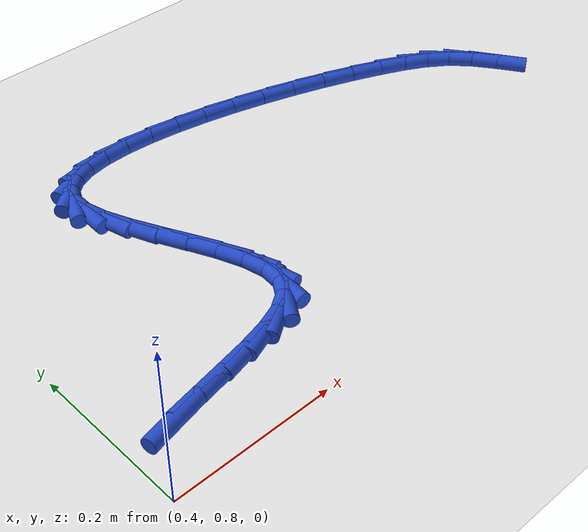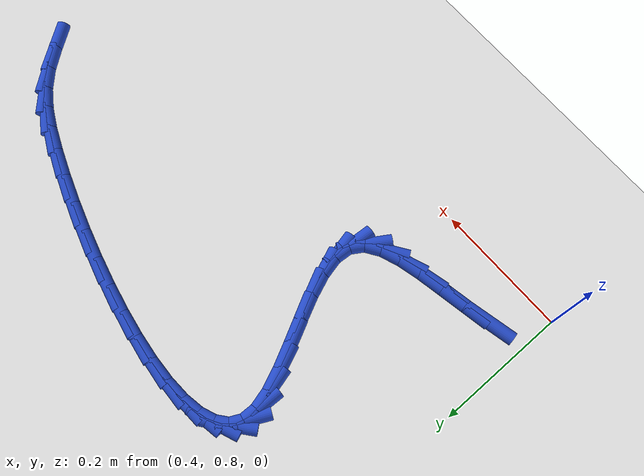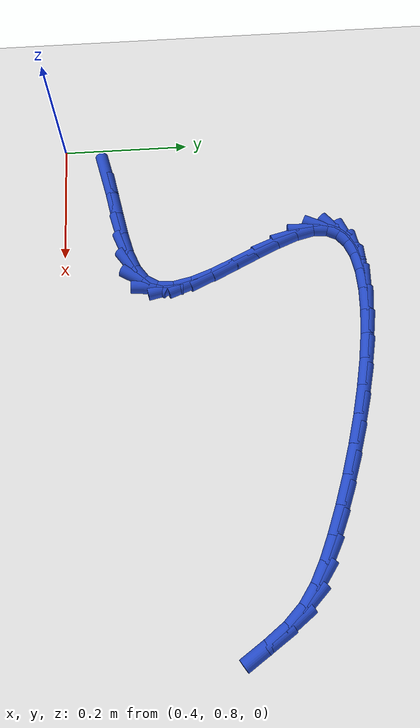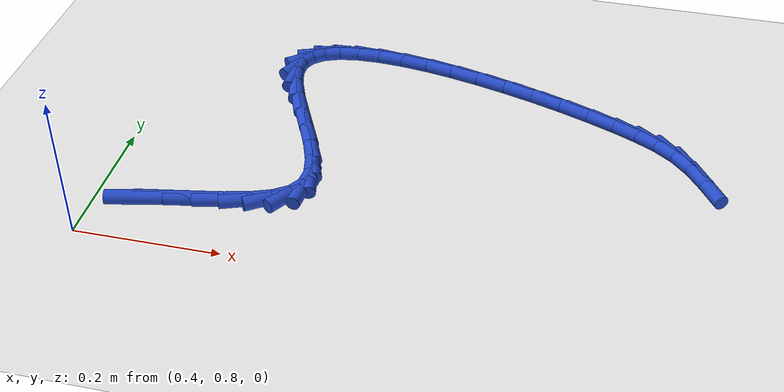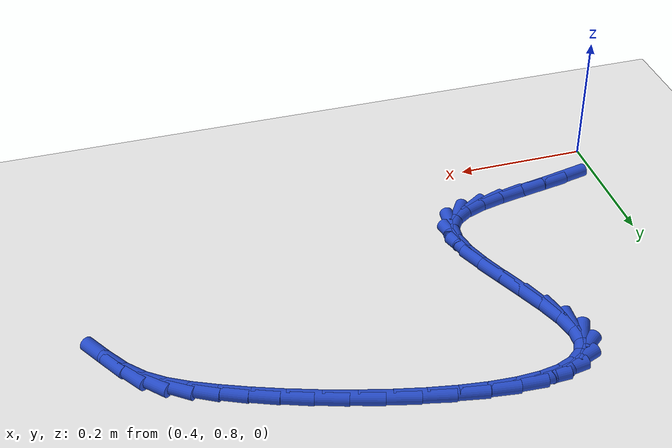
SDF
<sdf version="1.6">
 <world name="default">
  <model name="ground_plane">
   <static>1</static>
   <link name="link">
    <collision name="collision">
     <geometry><plane><normal>0 0 1</normal><size>100 100</size></plane></geometry>
     <surface><friction><ode><mu>100</mu><mu2>50</mu2></ode></friction></surface>
    </collision>
    <visual name="visual">
     <cast_shadows>0</cast_shadows>
     <geometry><plane><normal>0 0 1</normal><size>100 100</size></plane></geometry>
     <material>
      <script><uri>file://media/materials/scripts/gazebo.material</uri><name>Gazebo/WhiteGlow</name></script>
     </material>
    </visual>
   </link>
  </model>
  <model name="line">
   <link name="link_31">
    <pose>0.45767301450054715 0.8686455409579862 0.01 0 1.57 0.21296572190392837</pose>
    <collision name="collision">
     <geometry><cylinder><radius>0.01</radius><length>0.08</length></cylinder></geometry>
    </collision>
    <visual name="visual">
     <material>
      <script><name>Gazebo/Blue</name><uri>file://media/materials/scripts/gazebo.material</uri></script>
     </material>
     <geometry><cylinder><radius>0.01</radius><length>0.08</length></cylinder></geometry>
    </visual>
   </link>
   <link name="link_32">
    <pose>0.49574769273384056 0.8768789947400706 0.01 0 1.57 0.1778053408781745</pose>
    <collision name="collision">
     <geometry><cylinder><radius>0.01</radius><length>0.08</length></cylinder></geometry>
    </collision>
    <visual name="visual">
     <material>
      <script><name>Gazebo/Blue</name><uri>file://media/materials/scripts/gazebo.material</uri></script>
     </material>
     <geometry><cylinder><radius>0.01</radius><length>0.08</length></cylinder></geometry>
    </visual>
   </link>
   <link name="link_33">
    <pose>0.5342519465096038 0.8837983285011534 0.01 0 1.57 0.18293295546383148</pose>
    <collision name="collision">
     <geometry><cylinder><radius>0.01</radius><length>0.08</length></cylinder></geometry>
    </collision>
    <visual name="visual">
     <material>
      <script><name>Gazebo/Blue</name><uri>file://media/materials/scripts/gazebo.material</uri></script>
     </material>
     <geometry><cylinder><radius>0.01</radius><length>0.08</length></cylinder></geometry>
    </visual>
   </link>
   <link name="link_34">
    <pose>0.5712878523724615 0.8906500166373763 0.01 0 1.57 0.23413487884796141</pose>
    <collision name="collision">
     <geometry><cylinder><radius>0.01</radius><length>0.08</length></cylinder></geometry>
    </collision>
    <visual name="visual">
     <material>
      <script><name>Gazebo/Blue</name><uri>file://media/materials/scripts/gazebo.material</uri></script>
     </material>
     <geometry><cylinder><radius>0.01</radius><length>0.08</length></cylinder></geometry>
    </visual>
   </link>
   <link name="link_35">
    <pose>0.6049574868670381 0.8986805335448811 0.01 0 1.57 0.35270078433831425</pose>
    <collision name="collision">
     <geometry><cylinder><radius>0.01</radius><length>0.08</length></cylinder></geometry>
    </collision>
    <visual name="visual">
     <material>
      <script><name>Gazebo/Blue</name><uri>file://media/materials/scripts/gazebo.material</uri></script>
     </material>
     <geometry><cylinder><radius>0.01</radius><length>0.08</length></cylinder></geometry>
    </visual>
   </link>
   <link name="link_36">
    <pose>0.6333629265379582 0.9091363536198094 0.01 0 1.57 0.5868736189940619</pose>
    <collision name="collision">
     <geometry><cylinder><radius>0.01</radius><length>0.08</length></cylinder></geometry>
    </collision>
    <visual name="visual">
     <material>
      <script><name>Gazebo/Blue</name><uri>file://media/materials/scripts/gazebo.material</uri></script>
     </material>
     <geometry><cylinder><radius>0.01</radius><length>0.08</length></cylinder></geometry>
    </visual>
   </link>
   <link name="link_37">
    <pose>0.6546062479298468 0.923263951258303 0.01 0 1.57 1.0016968772270858</pose>
    <collision name="collision">
     <geometry><cylinder><radius>0.01</radius><length>0.08</length></cylinder></geometry>
    </collision>
    <visual name="visual">
     <material>
      <script><name>Gazebo/Blue</name><uri>file://media/materials/scripts/gazebo.material</uri></script>
     </material>
     <geometry><cylinder><radius>0.01</radius><length>0.08</length></cylinder></geometry>
    </visual>
   </link>
   <link name="link_38">
    <pose>0.6667897614419297 0.9423096559597306 0.01 0 1.57 1.4863423343294806</pose>
    <collision name="collision">
     <geometry><cylinder><radius>0.01</radius><length>0.08</length></cylinder></geometry>
    </collision>
    <visual name="visual">
     <material>
      <script><name>Gazebo/Blue</name><uri>file://media/materials/scripts/gazebo.material</uri></script>
     </material>
     <geometry><cylinder><radius>0.01</radius><length>0.08</length></cylinder></geometry>
    </visual>
   </link>
   <link name="link_39">
    <pose>0.668878673742882 0.9669851449939091 0.01 0 1.57 -1.361037192958256</pose>
    <collision name="collision">
     <geometry><cylinder><radius>0.01</radius><length>0.08</length></cylinder></geometry>
    </collision>
    <visual name="visual">
     <material>
      <script><name>Gazebo/Blue</name><uri>file://media/materials/scripts/gazebo.material</uri></script>
     </material>
     <geometry><cylinder><radius>0.01</radius><length>0.08</length></cylinder></geometry>
    </visual>
   </link>
   <link name="link_40">
    <pose>0.66264579945127 0.9962624962103419 0.01 0 1.57 -1.2113510625095167</pose>
    <collision name="collision">
     <geometry><cylinder><radius>0.01</radius><length>0.08</length></cylinder></geometry>
    </collision>
    <visual name="visual">
     <material>
      <script><name>Gazebo/Blue</name><uri>file://media/materials/scripts/gazebo.material</uri></script>
     </material>
     <geometry><cylinder><radius>0.01</radius><length>0.08</length></cylinder></geometry>
    </visual>
   </link>
   <link name="link_41">
    <pose>0.6504340049012347 1.028760582291836 0.01 0 1.57 -1.1383961814823833</pose>
    <collision name="collision">
     <geometry><cylinder><radius>0.01</radius><length>0.08</length></cylinder></geometry>
    </collision>
    <visual name="visual">
     <material>
      <script><name>Gazebo/Blue</name><uri>file://media/materials/scripts/gazebo.material</uri></script>
     </material>
     <geometry><cylinder><radius>0.01</radius><length>0.08</length></cylinder></geometry>
    </visual>
   </link>
   <link name="link_42">
    <pose>0.6345861564269176 1.0630982759211978 0.01 0 1.57 -1.113076028456115</pose>
    <collision name="collision">
     <geometry><cylinder><radius>0.01</radius><length>0.08</length></cylinder></geometry>
    </collision>
    <visual name="visual">
     <material>
      <script><name>Gazebo/Blue</name><uri>file://media/materials/scripts/gazebo.material</uri></script>
     </material>
     <geometry><cylinder><radius>0.01</radius><length>0.08</length></cylinder></geometry>
    </visual>
   </link>
   <link name="link_43">
    <pose>0.6174451203624599 1.0978944497812342 0.01 0 1.57 -1.127313495933282</pose>
    <collision name="collision">
     <geometry><cylinder><radius>0.01</radius><length>0.08</length></cylinder></geometry>
    </collision>
    <visual name="visual">
     <material>
      <script><name>Gazebo/Blue</name><uri>file://media/materials/scripts/gazebo.material</uri></script>
     </material>
     <geometry><cylinder><radius>0.01</radius><length>0.08</length></cylinder></geometry>
    </visual>
   </link>
   <link name="link_44">
    <pose>0.6013537630420026 1.1317679765547524 0.01 0 1.57 -1.1883550900838769</pose>
    <collision name="collision">
     <geometry><cylinder><radius>0.01</radius><length>0.08</length></cylinder></geometry>
    </collision>
    <visual name="visual">
     <material>
      <script><name>Gazebo/Blue</name><uri>file://media/materials/scripts/gazebo.material</uri></script>
     </material>
     <geometry><cylinder><radius>0.01</radius><length>0.08</length></cylinder></geometry>
    </visual>
   </link>
   <link name="link_45">
    <pose>0.5886549507996872 1.1633377289245581 0.01 0 1.57 -1.326081347961942</pose>
    <collision name="collision">
     <geometry><cylinder><radius>0.01</radius><length>0.08</length></cylinder></geometry>
    </collision>
    <visual name="visual">
     <material>
      <script><name>Gazebo/Blue</name><uri>file://media/materials/scripts/gazebo.material</uri></script>
     </material>
     <geometry><cylinder><radius>0.01</radius><length>0.08</length></cylinder></geometry>
    </visual>
   </link>
   <link name="link_46">
    <pose>0.5816915499696549 1.1912225795734592 0.01 0 1.57 1.5312222667075162</pose>
    <collision name="collision">
     <geometry><cylinder><radius>0.01</radius><length>0.08</length></cylinder></geometry>
    </collision>
    <visual name="visual">
     <material>
      <script><name>Gazebo/Blue</name><uri>file://media/materials/scripts/gazebo.material</uri></script>
     </material>
     <geometry><cylinder><radius>0.01</radius><length>0.08</length></cylinder></geometry>
    </visual>
   </link>
   <link name="link_47">
    <pose>0.5825995621508034 1.214155230788296 0.01 0 1.57 1.1026287620602837</pose>
    <collision name="collision">
     <geometry><cylinder><radius>0.01</radius><length>0.08</length></cylinder></geometry>
    </collision>
    <visual name="visual">
     <material>
      <script><name>Gazebo/Blue</name><uri>file://media/materials/scripts/gazebo.material</uri></script>
     </material>
     <geometry><cylinder><radius>0.01</radius><length>0.08</length></cylinder></geometry>
    </visual>
   </link>
   <link name="link_48">
    <pose>0.5915871864608415 1.231929179451142 0.01 0 1.57 0.6749368980002889</pose>
    <collision name="collision">
     <geometry><cylinder><radius>0.01</radius><length>0.08</length></cylinder></geometry>
    </collision>
    <visual name="visual">
     <material>
      <script><name>Gazebo/Blue</name><uri>file://media/materials/scripts/gazebo.material</uri></script>
     </material>
     <geometry><cylinder><radius>0.01</radius><length>0.08</length></cylinder></geometry>
    </visual>
   </link>
   <link name="link_49">
    <pose>0.6078133280040979 1.2449153080575177 0.01 0 1.57 0.3624519466559067</pose>
    <collision name="collision">
     <geometry><cylinder><radius>0.01</radius><length>0.08</length></cylinder></geometry>
    </collision>
    <visual name="visual">
     <material>
      <script><name>Gazebo/Blue</name><uri>file://media/materials/scripts/gazebo.material</uri></script>
     </material>
     <geometry><cylinder><radius>0.01</radius><length>0.08</length></cylinder></geometry>
    </visual>
   </link>
   <link name="link_50">
    <pose>0.6304263777736273 1.2534902846087292 0.01 0 1.57 0.15992822698306933</pose>
    <collision name="collision">
     <geometry><cylinder><radius>0.01</radius><length>0.08</length></cylinder></geometry>
    </collision>
    <visual name="visual">
     <material>
      <script><name>Gazebo/Blue</name><uri>file://media/materials/scripts/gazebo.material</uri></script>
     </material>
     <geometry><cylinder><radius>0.01</radius><length>0.08</length></cylinder></geometry>
    </visual>
   </link>
   <link name="link_51">
    <pose>0.6585747267624839 1.2580307771060848 0.01 0 1.57 0.026878131774821942</pose>
    <collision name="collision">
     <geometry><cylinder><radius>0.01</radius><length>0.08</length></cylinder></geometry>
    </collision>
    <visual name="visual">
     <material>
      <script><name>Gazebo/Blue</name><uri>file://media/materials/scripts/gazebo.material</uri></script>
     </material>
     <geometry><cylinder><radius>0.01</radius><length>0.08</length></cylinder></geometry>
    </visual>
   </link>
   <link name="link_52">
    <pose>0.6914067659637232 1.258913453550892 0.01 0 1.57 -0.06532432712867192</pose>
    <collision name="collision">
     <geometry><cylinder><radius>0.01</radius><length>0.08</length></cylinder></geometry>
    </collision>
    <visual name="visual">
     <material>
      <script><name>Gazebo/Blue</name><uri>file://media/materials/scripts/gazebo.material</uri></script>
     </material>
     <geometry><cylinder><radius>0.01</radius><length>0.08</length></cylinder></geometry>
    </visual>
   </link>
   <link name="link_53">
    <pose>0.7280708863703993 1.2565149819444574 0.01 0 1.57 -0.13297297661138285</pose>
    <collision name="collision">
     <geometry><cylinder><radius>0.01</radius><length>0.08</length></cylinder></geometry>
    </collision>
    <visual name="visual">
     <material>
      <script><name>Gazebo/Blue</name><uri>file://media/materials/scripts/gazebo.material</uri></script>
     </material>
     <geometry><cylinder><radius>0.01</radius><length>0.08</length></cylinder></geometry>
    </visual>
   </link>
   <link name="link_54">
    <pose>0.7677154789755671 1.251212030288089 0.01 0 1.57 -0.18530726575082315</pose>
    <collision name="collision">
     <geometry><cylinder><radius>0.01</radius><length>0.08</length></cylinder></geometry>
    </collision>
    <visual name="visual">
     <material>
      <script><name>Gazebo/Blue</name><uri>file://media/materials/scripts/gazebo.material</uri></script>
     </material>
     <geometry><cylinder><radius>0.01</radius><length>0.08</length></cylinder></geometry>
    </visual>
   </link>
   <link name="link_55">
    <pose>0.8094889347722817 1.2433812665830934 0.01 0 1.57 -0.2278379685912845</pose>
    <collision name="collision">
     <geometry><cylinder><radius>0.01</radius><length>0.08</length></cylinder></geometry>
    </collision>
    <visual name="visual">
     <material>
      <script><name>Gazebo/Blue</name><uri>file://media/materials/scripts/gazebo.material</uri></script>
     </material>
     <geometry><cylinder><radius>0.01</radius><length>0.08</length></cylinder></geometry>
    </visual>
   </link>
   <link name="link_56">
    <pose>0.8525396447535973 1.2333993588307788 0.01 0 1.57 -0.2640927065759335</pose>
    <collision name="collision">
     <geometry><cylinder><radius>0.01</radius><length>0.08</length></cylinder></geometry>
    </collision>
    <visual name="visual">
     <material>
      <script><name>Gazebo/Blue</name><uri>file://media/materials/scripts/gazebo.material</uri></script>
     </material>
     <geometry><cylinder><radius>0.01</radius><length>0.08</length></cylinder></geometry>
    </visual>
   </link>
   <link name="link_57">
    <pose>0.8960159999125691 1.2216429750324518 0.01 0 1.57 -0.29654380360677063</pose>
    <collision name="collision">
     <geometry><cylinder><radius>0.01</radius><length>0.08</length></cylinder></geometry>
    </collision>
    <visual name="visual">
     <material>
      <script><name>Gazebo/Blue</name><uri>file://media/materials/scripts/gazebo.material</uri></script>
     </material>
     <geometry><cylinder><radius>0.01</radius><length>0.08</length></cylinder></geometry>
    </visual>
   </link>
   <link name="link_58">
    <pose>0.9390663912422516 1.2084887831894207 0.01 0 1.57 -0.3271498618571152</pose>
    <collision name="collision">
     <geometry><cylinder><radius>0.01</radius><length>0.08</length></cylinder></geometry>
    </collision>
    <visual name="visual">
     <material>
      <script><name>Gazebo/Blue</name><uri>file://media/materials/scripts/gazebo.material</uri></script>
     </material>
     <geometry><cylinder><radius>0.01</radius><length>0.08</length></cylinder></geometry>
    </visual>
   </link>
   <link name="link_59">
    <pose>0.9808392097356997 1.194313451302992 0.01 0 1.57 -0.35774061045233907</pose>
    <collision name="collision">
     <geometry><cylinder><radius>0.01</radius><length>0.08</length></cylinder></geometry>
    </collision>
    <visual name="visual">
     <material>
      <script><name>Gazebo/Blue</name><uri>file://media/materials/scripts/gazebo.material</uri></script>
     </material>
     <geometry><cylinder><radius>0.01</radius><length>0.08</length></cylinder></geometry>
    </visual>
   </link>
   <link name="link_60">
    <pose>1.0204828463859676 1.1794936473744735 0.01 0 1.57 -0.39040044620142456</pose>
    <collision name="collision">
     <geometry><cylinder><radius>0.01</radius><length>0.08</length></cylinder></geometry>
    </collision>
    <visual name="visual">
     <material>
      <script><name>Gazebo/Blue</name><uri>file://media/materials/scripts/gazebo.material</uri></script>
     </material>
     <geometry><cylinder><radius>0.01</radius><length>0.08</length></cylinder></geometry>
    </visual>
   </link>
   <link name="link_61">
    <pose>1.0571456921861109 1.164406039405172 0.01 0 1.57 -0.4290235555523064</pose>
    <collision name="collision">
     <geometry><cylinder><radius>0.01</radius><length>0.08</length></cylinder></geometry>
    </collision>
    <visual name="visual">
     <material>
      <script><name>Gazebo/Blue</name><uri>file://media/materials/scripts/gazebo.material</uri></script>
     </material>
     <geometry><cylinder><radius>0.01</radius><length>0.08</length></cylinder></geometry>
    </visual>
   </link>
   <link name="link_62">
    <pose>1.0900070629147665 1.1493739428864636 0.01 0 1.57 -0.5007394149446814</pose>
    <collision name="collision">
     <geometry><cylinder><radius>0.01</radius><length>0.08</length></cylinder></geometry>
    </collision>
    <visual name="visual">
     <material>
      <script><name>Gazebo/Blue</name><uri>file://media/materials/scripts/gazebo.material</uri></script>
     </material>
     <geometry><cylinder><radius>0.01</radius><length>0.08</length></cylinder></geometry>
    </visual>
   </link>
   <link name="link_63">
    <pose>1.118926261108187 1.1335475366313033 0.01 0 1.57 -0.6305753564823436</pose>
    <collision name="collision">
     <geometry><cylinder><radius>0.01</radius><length>0.08</length></cylinder></geometry>
    </collision>
    <visual name="visual">
     <material>
      <script><name>Gazebo/Blue</name><uri>file://media/materials/scripts/gazebo.material</uri></script>
     </material>
     <geometry><cylinder><radius>0.01</radius><length>0.08</length></cylinder></geometry>
    </visual>
   </link>
   <link name="link_64">
    <pose>1.1444256375596882 1.1149330856613644 0.01 0 1.57 -0.8028672189630411</pose>
    <collision name="collision">
     <geometry><cylinder><radius>0.01</radius><length>0.08</length></cylinder></geometry>
    </collision>
    <visual name="visual">
     <material>
      <script><name>Gazebo/Blue</name><uri>file://media/materials/scripts/gazebo.material</uri></script>
     </material>
     <geometry><cylinder><radius>0.01</radius><length>0.08</length></cylinder></geometry>
    </visual>
   </link>
   <link name="link_65">
    <pose>1.167055743605833 1.091498185596402 0.01 0 1.57 -0.9478825323363468</pose>
    <collision name="collision">
     <geometry><cylinder><radius>0.01</radius><length>0.08</length></cylinder></geometry>
    </collision>
    <visual name="visual">
     <material>
      <script><name>Gazebo/Blue</name><uri>file://media/materials/scripts/gazebo.material</uri></script>
     </material>
     <geometry><cylinder><radius>0.01</radius><length>0.08</length></cylinder></geometry>
    </visual>
   </link>
   <link name="link_66">
    <pose>1.187503972121403 1.0630313287265598 0.01 0 1.57 -0.9951427723197955</pose>
    <collision name="collision">
     <geometry><cylinder><radius>0.01</radius><length>0.08</length></cylinder></geometry>
    </collision>
    <visual name="visual">
     <material>
      <script><name>Gazebo/Blue</name><uri>file://media/materials/scripts/gazebo.material</uri></script>
     </material>
     <geometry><cylinder><radius>0.01</radius><length>0.08</length></cylinder></geometry>
    </visual>
   </link>
  </model>
 </world>
</sdf>
